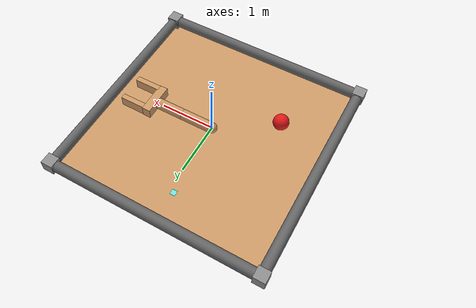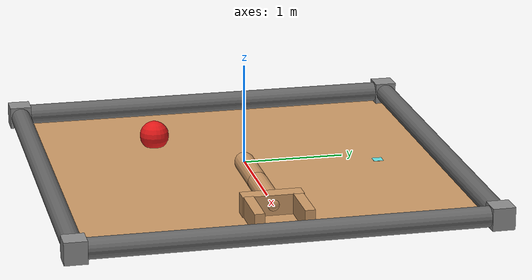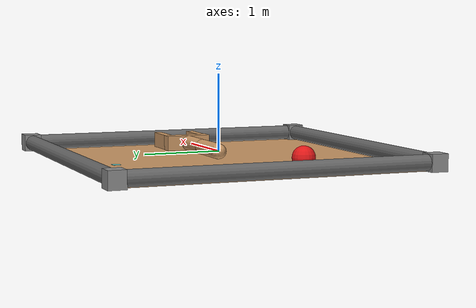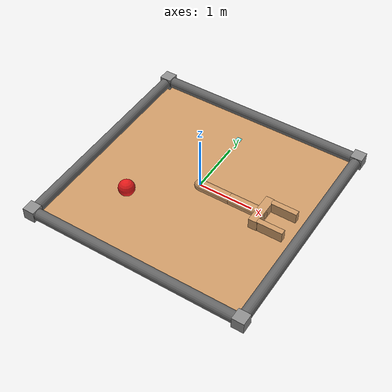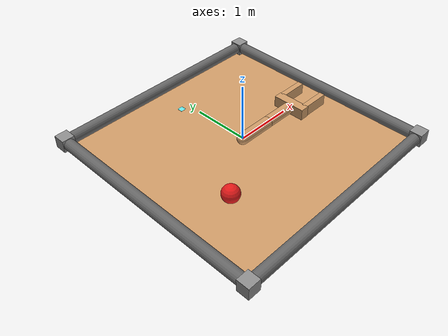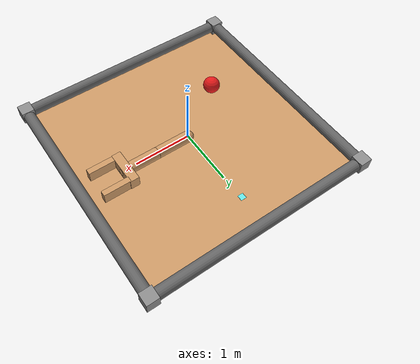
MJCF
<mujoco model="planar_robot">
    <compiler angle="degree" />

    <option cone="elliptic" iterations="50" jacobian="sparse" solver="Newton" timestep="0.001" tolerance="1e-10" />

    <size nconmax="2000" njmax="5000" nstack="5000000" />

    <default>
        <geom rgba=".8 .6 .4 1" />

        <default class="object">
            <geom material="MatObj" rgba=".9 .1 .1 1" size="0.15" type="sphere" />
        </default>

        <default class="obj_label">
            <geom material="MatObj" rgba="1 0 0 1" size="0.05 0.05 0.001" type="box" />
        </default>

        <default class="target_label">
            <geom material="MatObj" rgba=".4 .9 .9 1" size="0.05 0.05 0.001" type="box" />
        </default>

        <default class="border">
            <geom rgba=".4 .4 .4 1" size="0.1" type="capsule" />
        </default>

        <default class="borderpost">
            <geom rgba=".55 .55 .55 1" size="0.11 0.11 0.11" type="box" />
        </default>
    </default>
    <asset>
        <texture builtin="gradient" height="128" rgb1=".4 .6 .8" rgb2="0 0 0" type="skybox" width="128" />
        <texture builtin="checker" height="512" name="texplane" rgb1=".2 .3 .4" rgb2=".1 0.15 0.2" type="2d" width="512" />
        <texture builtin="flat" height="128" mark="cross" markrgb="1 1 1" name="texgeom" rgb1="0.6 0.6 0.6" rgb2="0.6 0.6 0.6" type="cube" width="128" />
        <material name="MatObj" texture="texgeom" texuniform="true" />
        <material name="MatPlane" reflectance="0" texrepeat="1 1" texture="texplane" texuniform="true" />
    </asset>

    <visual>
        <quality offsamples="8" shadowsize="4096" />
        <map force="0.05" znear="0.1" />
    </visual>

    <statistic extent="4" />

    <worldbody>

        <light diffuse=".8 .8 .8" dir="0 0 -10" directional="true" pos="0 0 10" />

        <geom condim="3" material="MatPlane" name="floor" pos="0 0 -0.1" size="2 2 .125" type="plane" />

        <geom class="border" fromto="-2 2 0 2 2 0" />
        <geom class="border" fromto="-2 -2 0 2 -2 0" />
        <geom class="border" fromto="2 2 0 2 -2 0" />
        <geom class="border" fromto="-2 2 0 -2 -2 0" />
        <geom class="borderpost" pos="2 2 0" />
        <geom class="borderpost" pos="-2 2 0" />
        <geom class="borderpost" pos="2 -2 0" />
        <geom class="borderpost" pos="-2 -2 0" />
        <geom class="target_label" name="target_pose" pos="-0.0681352171819 1.39787470418 -0.1" quat="1 0 0 0" />

        <body name="planar_robot">
            <geom fromto="0 0 0 0.6 0 0" size="0.1" type="capsule" />
            <joint axis="0 0 1" pos="0 0 0" type="hinge" />
            <body>
                <geom fromto="0.6 0 0 1.2 0 0" size="0.1" type="capsule" />
                <joint armature="0.01" axis="0 0 1" damping="5" pos="0.6 0 0" range="-120 120" stiffness="10" type="hinge" />
                <body>

                    <geom pos="1.2 0 0.0" size="0.08 0.3 0.1" type="box" />
                    <body>
                        <geom pos="1.5 -0.24 0.0" size="0.24 0.05 0.1" type="box" />
                        <joint armature="0.01" axis="0 0 1" damping="5" pos="1.2 -0.24 0" range="-30 0" stiffness="10" type="hinge" />
                    </body>
                    <body>
                        <geom pos="1.5 0.24 0.0" size="0.24 0.05 0.1" type="box" />
                        <joint armature="0.01" axis="0 0 1" damping="5" pos="1.2 0.24 0" range="0 30" stiffness="10" type="hinge" />
                    </body>

                </body>
            </body>
        </body>

        <body name="targetObj" pos="-1.01688428927 -0.727459859267 0" quat="1 0 0 0">
            <freejoint />
            <geom class="object" />
        </body>

    </worldbody>
</mujoco>
